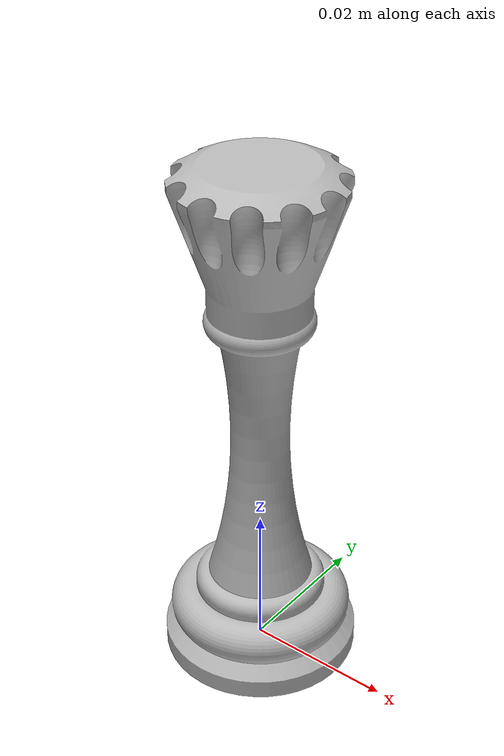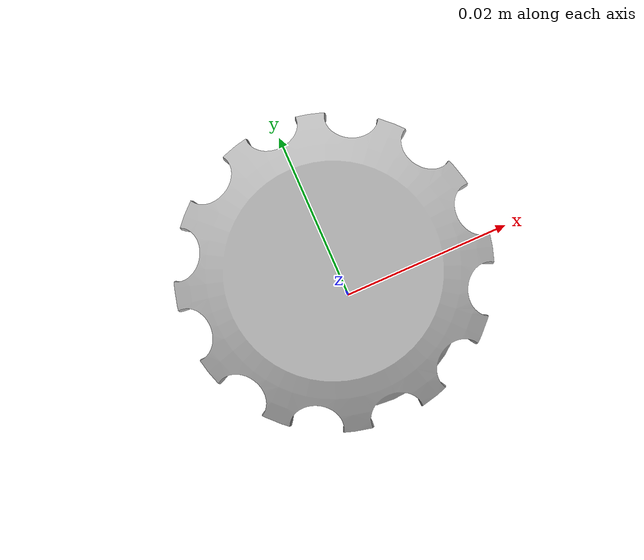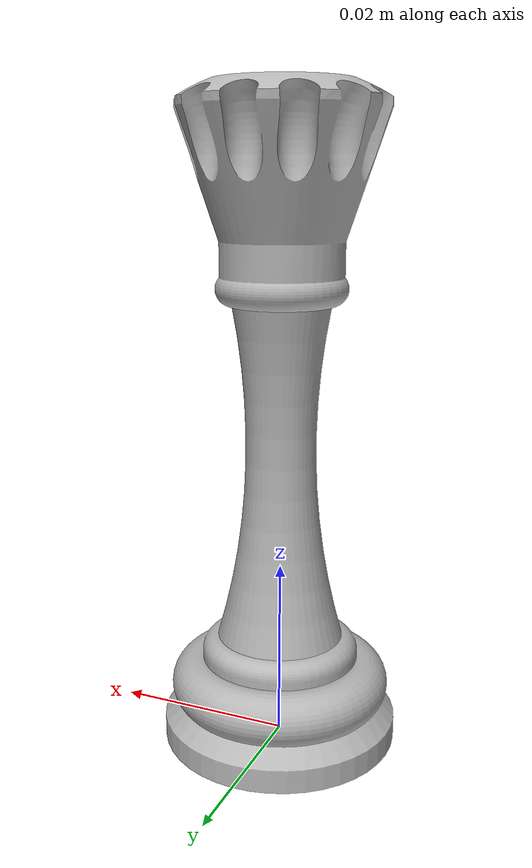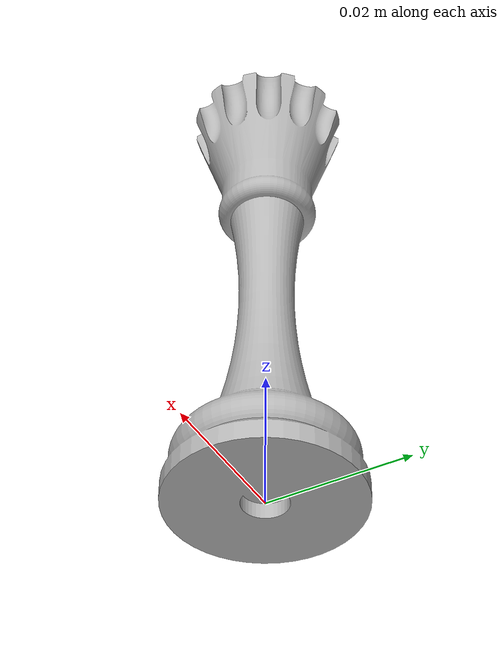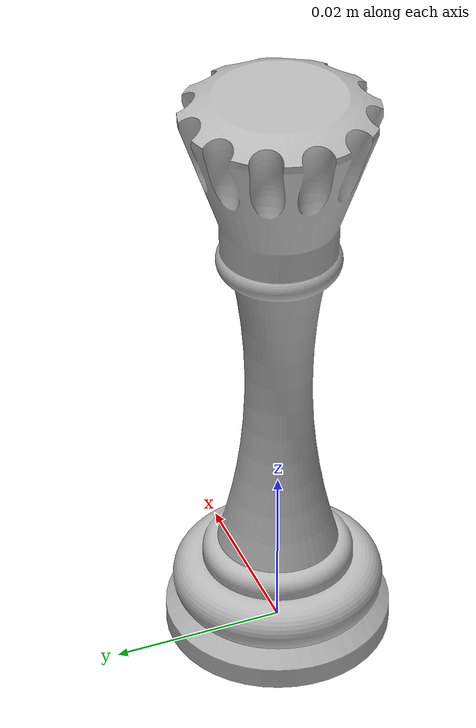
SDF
<?xml version="1.0" ?>
<sdf version="1.6">
  <model name="white_queen">
    <static>false</static> <!-- false because you want to pick it up -->
    <link name="link">

      <!-- Inertial properties -->
      <inertial>
        <mass>0.05</mass> <!-- 50 grams, change as needed -->
        <inertia>
          <ixx>0.00001</ixx>
          <iyy>0.00001</iyy>
          <izz>0.00001</izz>
          <ixy>0.0</ixy>
          <ixz>0.0</ixz>
          <iyz>0.0</iyz>
        </inertia>
      </inertial>

      <!-- Collision properties -->
      <collision name="collision">
        <geometry>
          <mesh>
            <uri>model://white_queen/meshes/white_queen.dae</uri>
          </mesh>
        </geometry>
        <surface>
          <contact>
            <ode/>
          </contact>
          <friction>
            <ode>
              <mu>1.0</mu> <!-- static friction -->
              <mu2>1.0</mu2> <!-- dynamic friction -->
            </ode>
          </friction>
        </surface>
      </collision>

      <!-- Visual -->
      <visual name="visual">
        <geometry>
          <mesh>
            <uri>model://white_queen/meshes/white_queen.dae</uri>
          </mesh>
        </geometry>
      </visual>
    </link>

    <plugin name="ros2_objectpose_plugin" filename="libros2_objectpose_plugin.so">
      <ros>
        <namespace>white_queen</namespace>  <!-- <<== Matches your model/entity name -->
      </ros>
    </plugin>

  </model>
</sdf>
